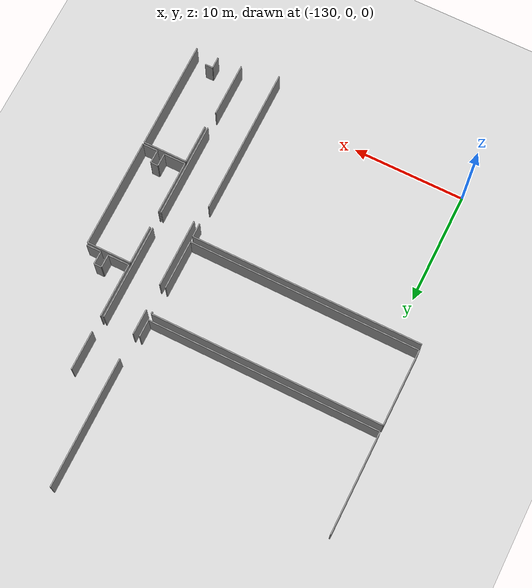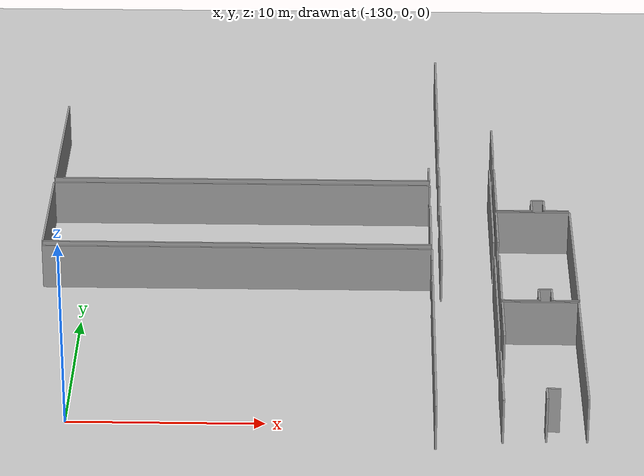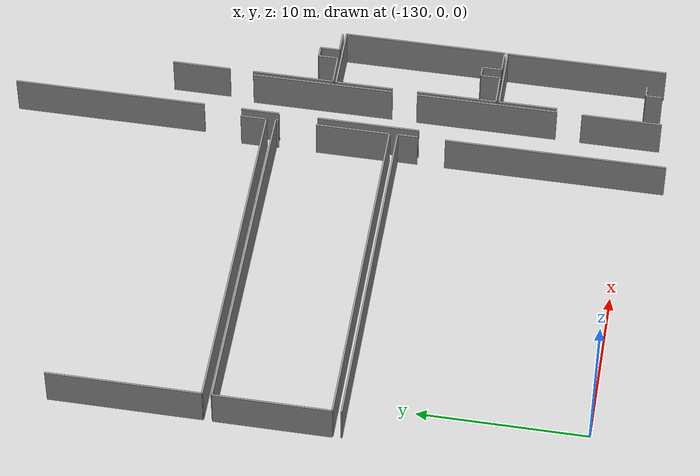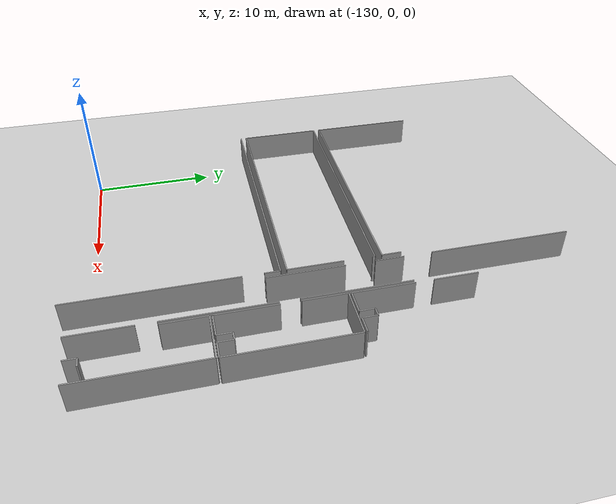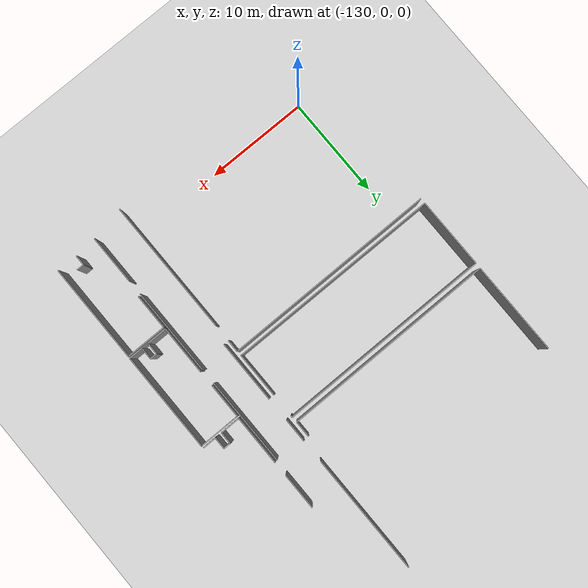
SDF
<sdf version="1.6">
 <world name="default">
  <model name="ground_plane">
   <static>1</static>
   <link name="link">
    <collision name="collision">
     <geometry><plane><normal>0 0 1</normal><size>100 100</size></plane></geometry>
     <surface><friction><ode><mu>100</mu><mu2>50</mu2></ode></friction></surface>
    </collision>
    <visual name="visual">
     <cast_shadows>0</cast_shadows>
     <geometry><plane><normal>0 0 1</normal><size>100 100</size></plane></geometry>
     <material>
      <script><uri>file://media/materials/scripts/gazebo.material</uri><name>Gazebo/Grey</name></script>
     </material>
    </visual>
   </link>
  </model>
  <model name="50015847">
   <static>1</static>
   <link name="Wall_21">
    <collision name="Wall_21_Collision">
     <geometry><box><size>9.05450755072 0.1 2.5</size></box></geometry>
     <pose>4.52725377536 0 1.25 0 0 0</pose>
    </collision>
    <visual name="Wall_21_Visual">
     <pose>4.52725377536 0 1.25 0 0 0</pose>
     <geometry><box><size>9.05450755072 0.1 2.5</size></box></geometry>
     <material>
      <script><uri>file://media/materials/scripts/gazebo.material</uri><name>Gazebo/Grey</name></script>
      <ambient>1 1 1 1</ambient>
     </material>
    </visual>
    <pose>0.0101693191641 -22.0885239233 0 0 0 1.57079632679</pose>
   </link>
   <link name="Wall_24">
    <collision name="Wall_24_Collision">
     <geometry><box><size>1.56073625871 0.1 2.5</size></box></geometry>
     <pose>0.780368129354 0 1.25 0 0 0</pose>
    </collision>
    <visual name="Wall_24_Visual">
     <pose>0.780368129354 0 1.25 0 0 0</pose>
     <geometry><box><size>1.56073625871 0.1 2.5</size></box></geometry>
     <material>
      <script><uri>file://media/materials/scripts/gazebo.material</uri><name>Gazebo/Grey</name></script>
      <ambient>1 1 1 1</ambient>
     </material>
    </visual>
    <pose>20.7062592159 -20.5206691412 0 0 0 -1.57079632679</pose>
   </link>
   <link name="Wall_25">
    <collision name="Wall_25_Collision">
     <geometry><box><size>20.696091121 0.1 2.5</size></box></geometry>
     <pose>10.3480455605 0 1.25 0 0 0</pose>
    </collision>
    <visual name="Wall_25_Visual">
     <pose>10.3480455605 0 1.25 0 0 0</pose>
     <geometry><box><size>20.696091121 0.1 2.5</size></box></geometry>
     <material>
      <script><uri>file://media/materials/scripts/gazebo.material</uri><name>Gazebo/Grey</name></script>
      <ambient>1 1 1 1</ambient>
     </material>
    </visual>
    <pose>20.7062592159 -22.0814053999 0 0 0 -3.14124869861</pose>
   </link>
   <link name="Wall_26">
    <collision name="Wall_26_Collision">
     <geometry><box><size>6.87445975492 0.1 2.5</size></box></geometry>
     <pose>3.43722987746 0 1.25 0 0 0</pose>
    </collision>
    <visual name="Wall_26_Visual">
     <pose>3.43722987746 0 1.25 0 0 0</pose>
     <geometry><box><size>6.87445975492 0.1 2.5</size></box></geometry>
     <material>
      <script><uri>file://media/materials/scripts/gazebo.material</uri><name>Gazebo/Grey</name></script>
      <ambient>1 1 1 1</ambient>
     </material>
    </visual>
    <pose>0.0 -29.5220419993 0 0 0 1.57079632679</pose>
   </link>
   <link name="Wall_27">
    <collision name="Wall_27_Collision">
     <geometry><box><size>20.7334621447 0.1 2.5</size></box></geometry>
     <pose>10.3667310724 0 1.25 0 0 0</pose>
    </collision>
    <visual name="Wall_27_Visual">
     <pose>10.3667310724 0 1.25 0 0 0</pose>
     <geometry><box><size>20.7334621447 0.1 2.5</size></box></geometry>
     <material>
      <script><uri>file://media/materials/scripts/gazebo.material</uri><name>Gazebo/Grey</name></script>
      <ambient>1 1 1 1</ambient>
     </material>
    </visual>
    <pose>0.0 -22.6475822444 0 0 0 0.0</pose>
   </link>
   <link name="Wall_28">
    <collision name="Wall_28_Collision">
     <geometry><box><size>0.181776580058 0.1 2.5</size></box></geometry>
     <pose>0.090888290029 0 1.25 0 0 0</pose>
    </collision>
    <visual name="Wall_28_Visual">
     <pose>0.090888290029 0 1.25 0 0 0</pose>
     <geometry><box><size>0.181776580058 0.1 2.5</size></box></geometry>
     <material>
      <script><uri>file://media/materials/scripts/gazebo.material</uri><name>Gazebo/Grey</name></script>
      <ambient>1 1 1 1</ambient>
     </material>
    </visual>
    <pose>20.7334621447 -22.6475822444 0 0 0 -1.57079632679</pose>
   </link>
   <link name="Wall_29">
    <collision name="Wall_29_Collision">
     <geometry><box><size>4.44424670768 0.1 2.5</size></box></geometry>
     <pose>2.22212335384 0 1.25 0 0 0</pose>
    </collision>
    <visual name="Wall_29_Visual">
     <pose>2.22212335384 0 1.25 0 0 0</pose>
     <geometry><box><size>4.44424670768 0.1 2.5</size></box></geometry>
     <material>
      <script><uri>file://media/materials/scripts/gazebo.material</uri><name>Gazebo/Grey</name></script>
      <ambient>1 1 1 1</ambient>
     </material>
    </visual>
    <pose>20.7334621447 -25.1136421417 0 0 0 -1.57079632679</pose>
   </link>
   <link name="Wall_30">
    <collision name="Wall_30_Collision">
     <geometry><box><size>20.7334931332 0.1 2.5</size></box></geometry>
     <pose>10.3667465666 0 1.25 0 0 0</pose>
    </collision>
    <visual name="Wall_30_Visual">
     <pose>10.3667465666 0 1.25 0 0 0</pose>
     <geometry><box><size>20.7334931332 0.1 2.5</size></box></geometry>
     <material>
      <script><uri>file://media/materials/scripts/gazebo.material</uri><name>Gazebo/Grey</name></script>
      <ambient>1 1 1 1</ambient>
     </material>
    </visual>
    <pose>20.7334621447 -29.5578888493 0 0 0 3.1398637183</pose>
   </link>
   <link name="Wall_32">
    <collision name="Wall_32_Collision">
     <geometry><box><size>20.7571058118 0.1 2.5</size></box></geometry>
     <pose>10.3785529059 0 1.25 0 0 0</pose>
    </collision>
    <visual name="Wall_32_Visual">
     <pose>10.3785529059 0 1.25 0 0 0</pose>
     <geometry><box><size>20.7571058118 0.1 2.5</size></box></geometry>
     <material>
      <script><uri>file://media/materials/scripts/gazebo.material</uri><name>Gazebo/Grey</name></script>
      <ambient>1 1 1 1</ambient>
     </material>
    </visual>
    <pose>0.00330502872833 -30.0452534703 0 0 0 0.0</pose>
   </link>
   <link name="Wall_33">
    <collision name="Wall_33_Collision">
     <geometry><box><size>1.22108099863 0.1 2.5</size></box></geometry>
     <pose>0.610540499314 0 1.25 0 0 0</pose>
    </collision>
    <visual name="Wall_33_Visual">
     <pose>0.610540499314 0 1.25 0 0 0</pose>
     <geometry><box><size>1.22108099863 0.1 2.5</size></box></geometry>
     <material>
      <script><uri>file://media/materials/scripts/gazebo.material</uri><name>Gazebo/Grey</name></script>
      <ambient>1 1 1 1</ambient>
     </material>
    </visual>
    <pose>20.7604108405 -30.0452534703 0 0 0 -1.57079632679</pose>
   </link>
   <link name="Wall_34">
    <collision name="Wall_34_Collision">
     <geometry><box><size>13.2437585804 0.1 2.5</size></box></geometry>
     <pose>6.62187929018 0 1.25 0 0 0</pose>
    </collision>
    <visual name="Wall_34_Visual">
     <pose>6.62187929018 0 1.25 0 0 0</pose>
     <geometry><box><size>13.2437585804 0.1 2.5</size></box></geometry>
     <material>
      <script><uri>file://media/materials/scripts/gazebo.material</uri><name>Gazebo/Grey</name></script>
      <ambient>1 1 1 1</ambient>
     </material>
    </visual>
    <pose>20.7604108405 -32.9297808512 0 0 0 -1.57079632679</pose>
   </link>
   <link name="Wall_63">
    <collision name="Wall_63_Collision">
     <geometry><box><size>3.49748309351 0.1 2.5</size></box></geometry>
     <pose>1.74874154675 0 1.25 0 0 0</pose>
    </collision>
    <visual name="Wall_63_Visual">
     <pose>1.74874154675 0 1.25 0 0 0</pose>
     <geometry><box><size>3.49748309351 0.1 2.5</size></box></geometry>
     <material>
      <script><uri>file://media/materials/scripts/gazebo.material</uri><name>Gazebo/Grey</name></script>
      <ambient>1 1 1 1</ambient>
     </material>
    </visual>
    <pose>24.3176386841 -39.2006915137 0 0 0 1.57079632679</pose>
   </link>
   <link name="Wall_64">
    <collision name="Wall_64_Collision">
     <geometry><box><size>3.92815376011 0.1 2.5</size></box></geometry>
     <pose>1.96407688005 0 1.25 0 0 0</pose>
    </collision>
    <visual name="Wall_64_Visual">
     <pose>1.96407688005 0 1.25 0 0 0</pose>
     <geometry><box><size>3.92815376011 0.1 2.5</size></box></geometry>
     <material>
      <script><uri>file://media/materials/scripts/gazebo.material</uri><name>Gazebo/Grey</name></script>
      <ambient>1 1 1 1</ambient>
     </material>
    </visual>
    <pose>24.3176386841 -35.7032084202 0 0 0 0.0</pose>
   </link>
   <link name="Wall_65">
    <collision name="Wall_65_Collision">
     <geometry><box><size>9.71398789851 0.1 2.5</size></box></geometry>
     <pose>4.85699394926 0 1.25 0 0 0</pose>
    </collision>
    <visual name="Wall_65_Visual">
     <pose>4.85699394926 0 1.25 0 0 0</pose>
     <geometry><box><size>9.71398789851 0.1 2.5</size></box></geometry>
     <material>
      <script><uri>file://media/materials/scripts/gazebo.material</uri><name>Gazebo/Grey</name></script>
      <ambient>1 1 1 1</ambient>
     </material>
    </visual>
    <pose>28.2457924442 -35.7032084202 0 0 0 -1.57079632679</pose>
   </link>
   <link name="Wall_68">
    <collision name="Wall_68_Collision">
     <geometry><box><size>0.698123760614 0.1 2.5</size></box></geometry>
     <pose>0.349061880307 0 1.25 0 0 0</pose>
    </collision>
    <visual name="Wall_68_Visual">
     <pose>0.349061880307 0 1.25 0 0 0</pose>
     <geometry><box><size>0.698123760614 0.1 2.5</size></box></geometry>
     <material>
      <script><uri>file://media/materials/scripts/gazebo.material</uri><name>Gazebo/Grey</name></script>
      <ambient>1 1 1 1</ambient>
     </material>
    </visual>
    <pose>26.9230182539 -44.3865358214 0 0 0 3.14159265359</pose>
   </link>
   <link name="Wall_69">
    <collision name="Wall_69_Collision">
     <geometry><box><size>1.00574566533 0.1 2.5</size></box></geometry>
     <pose>0.502872832664 0 1.25 0 0 0</pose>
    </collision>
    <visual name="Wall_69_Visual">
     <pose>0.502872832664 0 1.25 0 0 0</pose>
     <geometry><box><size>1.00574566533 0.1 2.5</size></box></geometry>
     <material>
      <script><uri>file://media/materials/scripts/gazebo.material</uri><name>Gazebo/Grey</name></script>
      <ambient>1 1 1 1</ambient>
     </material>
    </visual>
    <pose>26.2248944933 -44.3865358214 0 0 0 -1.57079632679</pose>
   </link>
   <link name="Wall_71">
    <collision name="Wall_71_Collision">
     <geometry><box><size>4.7798342401 0.1 2.5</size></box></geometry>
     <pose>2.38991712005 0 1.25 0 0 0</pose>
    </collision>
    <visual name="Wall_71_Visual">
     <pose>2.38991712005 0 1.25 0 0 0</pose>
     <geometry><box><size>4.7798342401 0.1 2.5</size></box></geometry>
     <material>
      <script><uri>file://media/materials/scripts/gazebo.material</uri><name>Gazebo/Grey</name></script>
      <ambient>1 1 1 1</ambient>
     </material>
    </visual>
    <pose>24.2985712107 -35.5026185997 0 0 0 1.57079632679</pose>
   </link>
   <link name="Wall_72">
    <collision name="Wall_72_Collision">
     <geometry><box><size>3.45756851579 0.1 2.5</size></box></geometry>
     <pose>1.72878425789 0 1.25 0 0 0</pose>
    </collision>
    <visual name="Wall_72_Visual">
     <pose>1.72878425789 0 1.25 0 0 0</pose>
     <geometry><box><size>3.45756851579 0.1 2.5</size></box></geometry>
     <material>
      <script><uri>file://media/materials/scripts/gazebo.material</uri><name>Gazebo/Grey</name></script>
      <ambient>1 1 1 1</ambient>
     </material>
    </visual>
    <pose>24.2985712107 -29.1943356892 0 0 0 1.57079632679</pose>
   </link>
   <link name="Wall_73">
    <collision name="Wall_73_Collision">
     <geometry><box><size>3.97086490059 0.1 2.5</size></box></geometry>
     <pose>1.9854324503 0 1.25 0 0 0</pose>
    </collision>
    <visual name="Wall_73_Visual">
     <pose>1.9854324503 0 1.25 0 0 0</pose>
     <geometry><box><size>3.97086490059 0.1 2.5</size></box></geometry>
     <material>
      <script><uri>file://media/materials/scripts/gazebo.material</uri><name>Gazebo/Grey</name></script>
      <ambient>1 1 1 1</ambient>
     </material>
    </visual>
    <pose>24.2985712107 -25.7367671734 0 0 0 0.0</pose>
   </link>
   <link name="Wall_74">
    <collision name="Wall_74_Collision">
     <geometry><box><size>9.77017338689 0.1 2.5</size></box></geometry>
     <pose>4.88508669345 0 1.25 0 0 0</pose>
    </collision>
    <visual name="Wall_74_Visual">
     <pose>4.88508669345 0 1.25 0 0 0</pose>
     <geometry><box><size>9.77017338689 0.1 2.5</size></box></geometry>
     <material>
      <script><uri>file://media/materials/scripts/gazebo.material</uri><name>Gazebo/Grey</name></script>
      <ambient>1 1 1 1</ambient>
     </material>
    </visual>
    <pose>28.2694361113 -25.7367671734 0 0 0 -1.57079632679</pose>
   </link>
   <link name="Wall_75">
    <collision name="Wall_75_Collision">
     <geometry><box><size>1.35836680734 0.1 2.5</size></box></geometry>
     <pose>0.679183403671 0 1.25 0 0 0</pose>
    </collision>
    <visual name="Wall_75_Visual">
     <pose>0.679183403671 0 1.25 0 0 0</pose>
     <geometry><box><size>1.35836680734 0.1 2.5</size></box></geometry>
     <material>
      <script><uri>file://media/materials/scripts/gazebo.material</uri><name>Gazebo/Grey</name></script>
      <ambient>1 1 1 1</ambient>
     </material>
    </visual>
    <pose>28.2694361113 -35.5069405603 0 0 0 3.14159265359</pose>
   </link>
   <link name="Wall_76">
    <collision name="Wall_76_Collision">
     <geometry><box><size>1.17379366451 0.1 2.5</size></box></geometry>
     <pose>0.586896832257 0 1.25 0 0 0</pose>
    </collision>
    <visual name="Wall_76_Visual">
     <pose>0.586896832257 0 1.25 0 0 0</pose>
     <geometry><box><size>1.17379366451 0.1 2.5</size></box></geometry>
     <material>
      <script><uri>file://media/materials/scripts/gazebo.material</uri><name>Gazebo/Grey</name></script>
      <ambient>1 1 1 1</ambient>
     </material>
    </visual>
    <pose>26.9110693039 -35.5069405603 0 0 0 1.57079632679</pose>
   </link>
   <link name="Wall_77">
    <collision name="Wall_77_Collision">
     <geometry><box><size>0.669903899934 0.1 2.5</size></box></geometry>
     <pose>0.334951949967 0 1.25 0 0 0</pose>
    </collision>
    <visual name="Wall_77_Visual">
     <pose>0.334951949967 0 1.25 0 0 0</pose>
     <geometry><box><size>0.669903899934 0.1 2.5</size></box></geometry>
     <material>
      <script><uri>file://media/materials/scripts/gazebo.material</uri><name>Gazebo/Grey</name></script>
      <ambient>1 1 1 1</ambient>
     </material>
    </visual>
    <pose>26.9110693039 -34.3331468958 0 0 0 3.14159265359</pose>
   </link>
   <link name="Wall_78">
    <collision name="Wall_78_Collision">
     <geometry><box><size>1.16413281131 0.1 2.5</size></box></geometry>
     <pose>0.582066405654 0 1.25 0 0 0</pose>
    </collision>
    <visual name="Wall_78_Visual">
     <pose>0.582066405654 0 1.25 0 0 0</pose>
     <geometry><box><size>1.16413281131 0.1 2.5</size></box></geometry>
     <material>
      <script><uri>file://media/materials/scripts/gazebo.material</uri><name>Gazebo/Grey</name></script>
      <ambient>1 1 1 1</ambient>
     </material>
    </visual>
    <pose>26.241165404 -34.3331468958 0 0 0 -1.57079632679</pose>
   </link>
   <link name="Wall_79">
    <collision name="Wall_79_Collision">
     <geometry><box><size>1.94260152983 0.1 2.5</size></box></geometry>
     <pose>0.971300764914 0 1.25 0 0 0</pose>
    </collision>
    <visual name="Wall_79_Visual">
     <pose>0.971300764914 0 1.25 0 0 0</pose>
     <geometry><box><size>1.94260152983 0.1 2.5</size></box></geometry>
     <material>
      <script><uri>file://media/materials/scripts/gazebo.material</uri><name>Gazebo/Grey</name></script>
      <ambient>1 1 1 1</ambient>
     </material>
    </visual>
    <pose>26.241165404 -35.4972797071 0 0 0 -3.13884432914</pose>
   </link>
   <link name="Wall_80">
    <collision name="Wall_80_Collision">
     <geometry><box><size>4.8929679158 0.1 2.5</size></box></geometry>
     <pose>2.4464839579 0 1.25 0 0 0</pose>
    </collision>
    <visual name="Wall_80_Visual">
     <pose>2.4464839579 0 1.25 0 0 0</pose>
     <geometry><box><size>4.8929679158 0.1 2.5</size></box></geometry>
     <material>
      <script><uri>file://media/materials/scripts/gazebo.material</uri><name>Gazebo/Grey</name></script>
      <ambient>1 1 1 1</ambient>
     </material>
    </visual>
    <pose>24.3247572075 -25.5277876646 0 0 0 1.57079632679</pose>
   </link>
   <link name="Wall_81">
    <collision name="Wall_81_Collision">
     <geometry><box><size>3.51172014034 0.1 2.5</size></box></geometry>
     <pose>1.75586007017 0 1.25 0 0 0</pose>
    </collision>
    <visual name="Wall_81_Visual">
     <pose>1.75586007017 0 1.25 0 0 0</pose>
     <geometry><box><size>3.51172014034 0.1 2.5</size></box></geometry>
     <material>
      <script><uri>file://media/materials/scripts/gazebo.material</uri><name>Gazebo/Grey</name></script>
      <ambient>1 1 1 1</ambient>
     </material>
    </visual>
    <pose>24.3247572075 -19.209081202 0 0 0 1.57079632679</pose>
   </link>
   <link name="Wall_84">
    <collision name="Wall_84_Collision">
     <geometry><box><size>1.31514720089 0.1 2.5</size></box></geometry>
     <pose>0.657573600447 0 1.25 0 0 0</pose>
    </collision>
    <visual name="Wall_84_Visual">
     <pose>0.657573600447 0 1.25 0 0 0</pose>
     <geometry><box><size>1.31514720089 0.1 2.5</size></box></geometry>
     <material>
      <script><uri>file://media/materials/scripts/gazebo.material</uri><name>Gazebo/Grey</name></script>
      <ambient>1 1 1 1</ambient>
     </material>
    </visual>
    <pose>28.2371485229 -25.5188895103 0 0 0 3.14159265359</pose>
   </link>
   <link name="Wall_85">
    <collision name="Wall_85_Collision">
     <geometry><box><size>1.16413281131 0.1 2.5</size></box></geometry>
     <pose>0.582066405654 0 1.25 0 0 0</pose>
    </collision>
    <visual name="Wall_85_Visual">
     <pose>0.582066405654 0 1.25 0 0 0</pose>
     <geometry><box><size>1.16413281131 0.1 2.5</size></box></geometry>
     <material>
      <script><uri>file://media/materials/scripts/gazebo.material</uri><name>Gazebo/Grey</name></script>
      <ambient>1 1 1 1</ambient>
     </material>
    </visual>
    <pose>26.922001322 -25.5188895103 0 0 0 1.57079632679</pose>
   </link>
   <link name="Wall_86">
    <collision name="Wall_86_Collision">
     <geometry><box><size>0.677530889307 0.1 2.5</size></box></geometry>
     <pose>0.338765444653 0 1.25 0 0 0</pose>
    </collision>
    <visual name="Wall_86_Visual">
     <pose>0.338765444653 0 1.25 0 0 0</pose>
     <geometry><box><size>0.677530889307 0.1 2.5</size></box></geometry>
     <material>
      <script><uri>file://media/materials/scripts/gazebo.material</uri><name>Gazebo/Grey</name></script>
      <ambient>1 1 1 1</ambient>
     </material>
    </visual>
    <pose>26.922001322 -24.354756699 0 0 0 3.14159265359</pose>
   </link>
   <link name="Wall_87">
    <collision name="Wall_87_Collision">
     <geometry><box><size>1.16947170387 0.1 2.5</size></box></geometry>
     <pose>0.584735851935 0 1.25 0 0 0</pose>
    </collision>
    <visual name="Wall_87_Visual">
     <pose>0.584735851935 0 1.25 0 0 0</pose>
     <geometry><box><size>1.16947170387 0.1 2.5</size></box></geometry>
     <material>
      <script><uri>file://media/materials/scripts/gazebo.material</uri><name>Gazebo/Grey</name></script>
      <ambient>1 1 1 1</ambient>
     </material>
    </visual>
    <pose>26.2444704327 -24.354756699 0 0 0 -1.57079632679</pose>
   </link>
   <link name="Wall_88">
    <collision name="Wall_88_Collision">
     <geometry><box><size>1.91971652474 0.1 2.5</size></box></geometry>
     <pose>0.959858262369 0 1.25 0 0 0</pose>
    </collision>
    <visual name="Wall_88_Visual">
     <pose>0.959858262369 0 1.25 0 0 0</pose>
     <geometry><box><size>1.91971652474 0.1 2.5</size></box></geometry>
     <material>
      <script><uri>file://media/materials/scripts/gazebo.material</uri><name>Gazebo/Grey</name></script>
      <ambient>1 1 1 1</ambient>
     </material>
    </visual>
    <pose>26.2444704327 -25.5242284029 0 0 0 -3.13973859665</pose>
   </link>
   <link name="Wall_99">
    <collision name="Wall_99_Collision">
     <geometry><box><size>6.14531957085 0.1 2.5</size></box></geometry>
     <pose>3.07265978543 0 1.25 0 0 0</pose>
    </collision>
    <visual name="Wall_99_Visual">
     <pose>3.07265978543 0 1.25 0 0 0</pose>
     <geometry><box><size>6.14531957085 0.1 2.5</size></box></geometry>
     <material>
      <script><uri>file://media/materials/scripts/gazebo.material</uri><name>Gazebo/Grey</name></script>
      <ambient>1 1 1 1</ambient>
     </material>
    </visual>
    <pose>21.2645548381 -31.2686225657 0 0 0 1.57079632679</pose>
   </link>
   <link name="Wall_100">
    <collision name="Wall_100_Collision">
     <geometry><box><size>2.30335079066 0.1 2.5</size></box></geometry>
     <pose>1.15167539533 0 1.25 0 0 0</pose>
    </collision>
    <visual name="Wall_100_Visual">
     <pose>1.15167539533 0 1.25 0 0 0</pose>
     <geometry><box><size>2.30335079066 0.1 2.5</size></box></geometry>
     <material>
      <script><uri>file://media/materials/scripts/gazebo.material</uri><name>Gazebo/Grey</name></script>
      <ambient>1 1 1 1</ambient>
     </material>
    </visual>
    <pose>21.2645548381 -22.7719021711 0 0 0 1.57079632679</pose>
   </link>
   <link name="Wall_101">
    <collision name="Wall_101_Collision">
     <geometry><box><size>11.5792952662 0.1 2.5</size></box></geometry>
     <pose>5.78964763309 0 1.25 0 0 0</pose>
    </collision>
    <visual name="Wall_101_Visual">
     <pose>5.78964763309 0 1.25 0 0 0</pose>
     <geometry><box><size>11.5792952662 0.1 2.5</size></box></geometry>
     <material>
      <script><uri>file://media/materials/scripts/gazebo.material</uri><name>Gazebo/Grey</name></script>
      <ambient>1 1 1 1</ambient>
     </material>
    </visual>
    <pose>21.2645548381 -18.1926577516 0 0 0 1.57079632679</pose>
   </link>
   <link name="Wall_106">
    <collision name="Wall_106_Collision">
     <geometry><box><size>8.54604159252 0.1 2.5</size></box></geometry>
     <pose>4.27302079626 0 1.25 0 0 0</pose>
    </collision>
    <visual name="Wall_106_Visual">
     <pose>4.27302079626 0 1.25 0 0 0</pose>
     <geometry><box><size>8.54604159252 0.1 2.5</size></box></geometry>
     <material>
      <script><uri>file://media/materials/scripts/gazebo.material</uri><name>Gazebo/Grey</name></script>
      <ambient>1 1 1 1</ambient>
     </material>
    </visual>
    <pose>24.0710326944 -20.6907510042 0 0 0 -1.57079632679</pose>
   </link>
   <link name="Wall_107">
    <collision name="Wall_107_Collision">
     <geometry><box><size>8.51222860629 0.1 2.5</size></box></geometry>
     <pose>4.25611430315 0 1.25 0 0 0</pose>
    </collision>
    <visual name="Wall_107_Visual">
     <pose>4.25611430315 0 1.25 0 0 0</pose>
     <geometry><box><size>8.51222860629 0.1 2.5</size></box></geometry>
     <material>
      <script><uri>file://media/materials/scripts/gazebo.material</uri><name>Gazebo/Grey</name></script>
      <ambient>1 1 1 1</ambient>
     </material>
    </visual>
    <pose>24.0710326944 -30.742360299 0 0 0 -1.57079632679</pose>
   </link>
   <link name="Wall_108">
    <collision name="Wall_108_Collision">
     <geometry><box><size>4.81974881782 0.1 2.5</size></box></geometry>
     <pose>2.40987440891 0 1.25 0 0 0</pose>
    </collision>
    <visual name="Wall_108_Visual">
     <pose>2.40987440891 0 1.25 0 0 0</pose>
     <geometry><box><size>4.81974881782 0.1 2.5</size></box></geometry>
     <material>
      <script><uri>file://media/materials/scripts/gazebo.material</uri><name>Gazebo/Grey</name></script>
      <ambient>1 1 1 1</ambient>
     </material>
    </visual>
    <pose>24.0710326944 -40.7469364926 0 0 0 -1.57079632679</pose>
   </link>
   <pose>-132.35 43.9162226064 0 0 0 0</pose>
  </model>
 </world>
</sdf>
